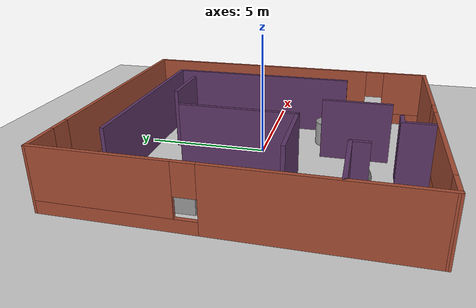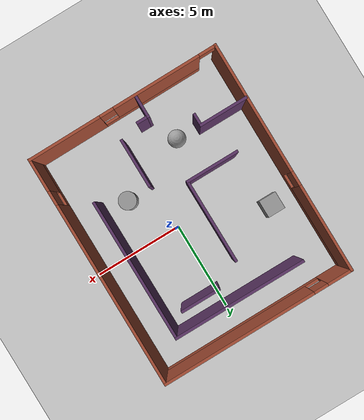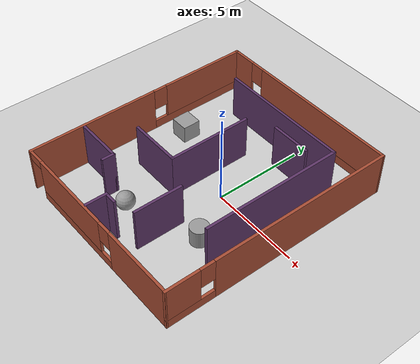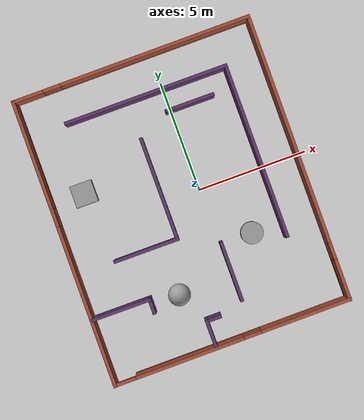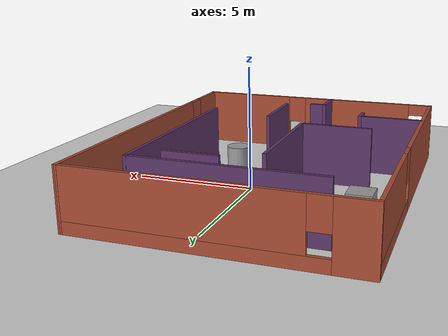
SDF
<sdf version="1.7">
 <world name="default">
  <light name="sun" type="directional">
   <pose>0 0 10 0 -0 0</pose>
   <diffuse>0.8 0.8 0.8 1</diffuse>
   <specular>0.2 0.2 0.2 1</specular>
   <attenuation>
    <range>1000</range>
    <constant>0.9</constant>
    <linear>0.01</linear>
    <quadratic>0.001</quadratic>
   </attenuation>
   <direction>-0.5 0.1 -0.9</direction>
   <spot><inner_angle>0</inner_angle><outer_angle>0</outer_angle><falloff>0</falloff></spot>
  </light>
  <model name="ground_plane">
   <static>1</static>
   <link name="link">
    <collision name="collision">
     <geometry><plane><normal>0 0 1</normal><size>100 100</size></plane></geometry>
     <surface>
      <contact><collide_bitmask>65535</collide_bitmask></contact>
      <friction><ode><mu>100</mu><mu2>50</mu2></ode></friction>
     </surface>
    </collision>
    <visual name="visual">
     <cast_shadows>0</cast_shadows>
     <geometry><plane><normal>0 0 1</normal><size>100 100</size></plane></geometry>
     <material>
      <script><uri>file://media/materials/scripts/gazebo.material</uri><name>Gazebo/Grey</name></script>
     </material>
    </visual>
   </link>
  </model>
  <gravity>0 0 -9.8</gravity>
  <magnetic_field>6e-06 2.3e-05 -4.2e-05</magnetic_field>
  <atmosphere type="adiabatic"/>
  <physics type="ode">
   <max_step_size>0.001</max_step_size>
   <real_time_factor>1</real_time_factor>
   <real_time_update_rate>1000</real_time_update_rate>
  </physics>
  <scene><ambient>0.4 0.4 0.4 1</ambient><background>0.7 0.7 0.7 1</background><shadows>1</shadows></scene>
  <spherical_coordinates>
   <surface_model>EARTH_WGS84</surface_model>
   <latitude_deg>0</latitude_deg>
   <longitude_deg>0</longitude_deg>
   <elevation>0</elevation>
   <heading_deg>0</heading_deg>
  </spherical_coordinates>
  <model name="maze">
   <pose>-0.910264 -0.210182 0 0 -0 0</pose>
   <link name="Wall_1">
    <pose>-0.015736 -6.50732 0 0 -0 -3.13597</pose>
    <visual name="Wall_1_Visual_0">
     <pose>-3.41573 0 1.25 0 -0 0</pose>
     <geometry><box><size>4.16472 0.15 2.5</size></box></geometry>
     <material>
      <script><uri>file://media/materials/scripts/gazebo.material</uri><name>Gazebo/Bricks</name></script>
      <ambient>1 1 1 1</ambient>
     </material>
     <meta><layer>0</layer></meta>
    </visual>
    <collision name="Wall_1_Collision_0">
     <geometry><box><size>4.16472 0.15 2.5</size></box></geometry>
     <pose>-3.41573 0 1.25 0 -0 0</pose>
    </collision>
    <visual name="Wall_1_Visual_1">
     <pose>5.42902 0 1.25 0 -0 0</pose>
     <geometry><box><size>0.138125 0.15 2.5</size></box></geometry>
     <material>
      <script><uri>file://media/materials/scripts/gazebo.material</uri><name>Gazebo/Bricks</name></script>
      <ambient>1 1 1 1</ambient>
     </material>
     <meta><layer>0</layer></meta>
    </visual>
    <collision name="Wall_1_Collision_1">
     <geometry><box><size>0.138125 0.15 2.5</size></box></geometry>
     <pose>5.42902 0 1.25 0 -0 0</pose>
    </collision>
    <visual name="Wall_1_Visual_2">
     <pose>1.5633 0 0.25 0 -0 0</pose>
     <geometry><box><size>5.79333 0.15 0.5</size></box></geometry>
     <material>
      <script><uri>file://media/materials/scripts/gazebo.material</uri><name>Gazebo/Bricks</name></script>
      <ambient>1 1 1 1</ambient>
     </material>
     <meta><layer>0</layer></meta>
    </visual>
    <collision name="Wall_1_Collision_2">
     <geometry><box><size>5.79333 0.15 0.5</size></box></geometry>
     <pose>1.5633 0 0.25 0 -0 0</pose>
    </collision>
    <visual name="Wall_1_Visual_3">
     <pose>1.9633 0 1.5 0 -0 0</pose>
     <geometry><box><size>4.99333 0.15 2</size></box></geometry>
     <material>
      <script><uri>file://media/materials/scripts/gazebo.material</uri><name>Gazebo/Bricks</name></script>
      <ambient>1 1 1 1</ambient>
     </material>
     <meta><layer>0</layer></meta>
    </visual>
    <collision name="Wall_1_Collision_3">
     <geometry><box><size>4.99333 0.15 2</size></box></geometry>
     <pose>1.9633 0 1.5 0 -0 0</pose>
    </collision>
    <visual name="Wall_1_Visual_4">
     <pose>-0.933367 0 1.9 0 -0 0</pose>
     <geometry><box><size>0.8 0.15 1.2</size></box></geometry>
     <material>
      <script><uri>file://media/materials/scripts/gazebo.material</uri><name>Gazebo/Bricks</name></script>
      <ambient>1 1 1 1</ambient>
     </material>
     <meta><layer>0</layer></meta>
    </visual>
    <collision name="Wall_1_Collision_4">
     <geometry><box><size>0.8 0.15 1.2</size></box></geometry>
     <pose>-0.933367 0 1.9 0 -0 0</pose>
    </collision>
    <visual name="Wall_1_Visual_5">
     <pose>4.90996 0 2.25 0 -0 0</pose>
     <geometry><box><size>0.9 0.15 0.5</size></box></geometry>
     <material>
      <script><uri>file://media/materials/scripts/gazebo.material</uri><name>Gazebo/Bricks</name></script>
      <ambient>1 1 1 1</ambient>
     </material>
     <meta><layer>0</layer></meta>
    </visual>
    <collision name="Wall_1_Collision_5">
     <geometry><box><size>0.9 0.15 0.5</size></box></geometry>
     <pose>4.90996 0 2.25 0 -0 0</pose>
    </collision>
   </link>
   <link name="Wall_18">
    <collision name="Wall_18_Collision">
     <geometry><box><size>2.75 0.15 2.5</size></box></geometry>
     <pose>0 0 1.25 0 -0 0</pose>
    </collision>
    <visual name="Wall_18_Visual">
     <pose>0 0 1.25 0 -0 0</pose>
     <geometry><box><size>2.75 0.15 2.5</size></box></geometry>
     <material>
      <script><uri>file://media/materials/scripts/gazebo.material</uri><name>Gazebo/Grey</name></script>
      <ambient>0.360784 0.207843 0.4 1</ambient>
     </material>
     <meta><layer>0</layer></meta>
    </visual>
    <pose>-4.06423 -3.53337 0 0 -0 0</pose>
   </link>
   <link name="Wall_19">
    <collision name="Wall_19_Collision">
     <geometry><box><size>0.75 0.15 2.5</size></box></geometry>
     <pose>0 0 1.25 0 -0 0</pose>
    </collision>
    <visual name="Wall_19_Visual">
     <pose>0 0 1.25 0 -0 0</pose>
     <geometry><box><size>0.75 0.15 2.5</size></box></geometry>
     <material>
      <script><uri>file://media/materials/scripts/gazebo.material</uri><name>Gazebo/Grey</name></script>
      <ambient>0.360784 0.207843 0.4 1</ambient>
     </material>
     <meta><layer>0</layer></meta>
    </visual>
    <pose>-2.76423 -3.83337 0 0 -0 -1.5708</pose>
   </link>
   <link name="Wall_2">
    <pose>-5.42275 -0.030618 0 0 -0 1.56834</pose>
    <visual name="Wall_2_Visual_0">
     <pose>-2.88442 0 1.25 0 -0 0</pose>
     <geometry><box><size>7.41559 0.15 2.5</size></box></geometry>
     <material>
      <script><uri>file://media/materials/scripts/gazebo.material</uri><name>Gazebo/Bricks</name></script>
      <ambient>1 1 1 1</ambient>
     </material>
     <meta><layer>0</layer></meta>
    </visual>
    <collision name="Wall_2_Collision_0">
     <geometry><box><size>7.41559 0.15 2.5</size></box></geometry>
     <pose>-2.88442 0 1.25 0 -0 0</pose>
    </collision>
    <visual name="Wall_2_Visual_1">
     <pose>3.7078 0 0.25 0 -0 0</pose>
     <geometry><box><size>5.76885 0.15 0.5</size></box></geometry>
     <material>
      <script><uri>file://media/materials/scripts/gazebo.material</uri><name>Gazebo/Bricks</name></script>
      <ambient>1 1 1 1</ambient>
     </material>
     <meta><layer>0</layer></meta>
    </visual>
    <collision name="Wall_2_Collision_1">
     <geometry><box><size>5.76885 0.15 0.5</size></box></geometry>
     <pose>3.7078 0 0.25 0 -0 0</pose>
    </collision>
    <visual name="Wall_2_Visual_2">
     <pose>4.1078 0 1.5 0 -0 0</pose>
     <geometry><box><size>4.96885 0.15 2</size></box></geometry>
     <material>
      <script><uri>file://media/materials/scripts/gazebo.material</uri><name>Gazebo/Bricks</name></script>
      <ambient>1 1 1 1</ambient>
     </material>
     <meta><layer>0</layer></meta>
    </visual>
    <collision name="Wall_2_Collision_2">
     <geometry><box><size>4.96885 0.15 2</size></box></geometry>
     <pose>4.1078 0 1.5 0 -0 0</pose>
    </collision>
    <visual name="Wall_2_Visual_3">
     <pose>1.22337 0 1.9 0 -0 0</pose>
     <geometry><box><size>0.8 0.15 1.2</size></box></geometry>
     <material>
      <script><uri>file://media/materials/scripts/gazebo.material</uri><name>Gazebo/Bricks</name></script>
      <ambient>1 1 1 1</ambient>
     </material>
     <meta><layer>0</layer></meta>
    </visual>
    <collision name="Wall_2_Collision_3">
     <geometry><box><size>0.8 0.15 1.2</size></box></geometry>
     <pose>1.22337 0 1.9 0 -0 0</pose>
    </collision>
   </link>
   <link name="Wall_21">
    <collision name="Wall_21_Collision">
     <geometry><box><size>1.28004 0.15 2.5</size></box></geometry>
     <pose>0 0 1.25 0 -0 0</pose>
    </collision>
    <visual name="Wall_21_Visual">
     <pose>0 0 1.25 0 -0 0</pose>
     <geometry><box><size>1.28004 0.15 2.5</size></box></geometry>
     <material>
      <script><uri>file://media/materials/scripts/gazebo.material</uri><name>Gazebo/Grey</name></script>
      <ambient>0.360784 0.207843 0.4 1</ambient>
     </material>
     <meta><layer>0</layer></meta>
    </visual>
    <pose>-0.745693 -5.83385 0 0 -0 1.5708</pose>
   </link>
   <link name="Wall_25">
    <collision name="Wall_25_Collision">
     <geometry><box><size>7.5 0.15 2.5</size></box></geometry>
     <pose>0 0 1.25 0 -0 0</pose>
    </collision>
    <visual name="Wall_25_Visual">
     <pose>0 0 1.25 0 -0 0</pose>
     <geometry><box><size>7.5 0.15 2.5</size></box></geometry>
     <material>
      <script><uri>file://media/materials/scripts/gazebo.material</uri><name>Gazebo/Grey</name></script>
      <ambient>0.360784 0.207843 0.4 1</ambient>
     </material>
     <meta><layer>0</layer></meta>
    </visual>
    <pose>0.115596 4.87894 0 0 -0 0</pose>
   </link>
   <link name="Wall_26">
    <collision name="Wall_26_Collision">
     <geometry><box><size>8 0.15 2.5</size></box></geometry>
     <pose>0 0 1.25 0 -0 0</pose>
    </collision>
    <visual name="Wall_26_Visual">
     <pose>0 0 1.25 0 -0 0</pose>
     <geometry><box><size>8 0.15 2.5</size></box></geometry>
     <material>
      <script><uri>file://media/materials/scripts/gazebo.material</uri><name>Gazebo/Grey</name></script>
      <ambient>0.360784 0.207843 0.4 1</ambient>
     </material>
     <meta><layer>0</layer></meta>
    </visual>
    <pose>3.7906 0.95394 0 0 -0 -1.5708</pose>
   </link>
   <link name="Wall_3">
    <pose>0.016077 6.53047 0 0 -0 0.003188</pose>
    <visual name="Wall_3_Visual_0">
     <pose>-4.77311 0 1.25 0 -0 0</pose>
     <geometry><box><size>1.44952 0.15 2.5</size></box></geometry>
     <material>
      <script><uri>file://media/materials/scripts/gazebo.material</uri><name>Gazebo/Bricks</name></script>
      <ambient>1 1 1 1</ambient>
     </material>
     <meta><layer>0</layer></meta>
    </visual>
    <collision name="Wall_3_Collision_0">
     <geometry><box><size>1.44952 0.15 2.5</size></box></geometry>
     <pose>-4.77311 0 1.25 0 -0 0</pose>
    </collision>
    <visual name="Wall_3_Visual_1">
     <pose>0.724758 0 0.25 0 -0 0</pose>
     <geometry><box><size>9.54622 0.15 0.5</size></box></geometry>
     <material>
      <script><uri>file://media/materials/scripts/gazebo.material</uri><name>Gazebo/Bricks</name></script>
      <ambient>1 1 1 1</ambient>
     </material>
     <meta><layer>0</layer></meta>
    </visual>
    <collision name="Wall_3_Collision_1">
     <geometry><box><size>9.54622 0.15 0.5</size></box></geometry>
     <pose>0.724758 0 0.25 0 -0 0</pose>
    </collision>
    <visual name="Wall_3_Visual_2">
     <pose>1.12476 0 1.5 0 -0 0</pose>
     <geometry><box><size>8.74622 0.15 2</size></box></geometry>
     <material>
      <script><uri>file://media/materials/scripts/gazebo.material</uri><name>Gazebo/Bricks</name></script>
      <ambient>1 1 1 1</ambient>
     </material>
     <meta><layer>0</layer></meta>
    </visual>
    <collision name="Wall_3_Collision_2">
     <geometry><box><size>8.74622 0.15 2</size></box></geometry>
     <pose>1.12476 0 1.5 0 -0 0</pose>
    </collision>
    <visual name="Wall_3_Visual_3">
     <pose>-3.64835 0 1.9 0 -0 0</pose>
     <geometry><box><size>0.8 0.15 1.2</size></box></geometry>
     <material>
      <script><uri>file://media/materials/scripts/gazebo.material</uri><name>Gazebo/Bricks</name></script>
      <ambient>1 1 1 1</ambient>
     </material>
     <meta><layer>0</layer></meta>
    </visual>
    <collision name="Wall_3_Collision_3">
     <geometry><box><size>0.8 0.15 1.2</size></box></geometry>
     <pose>-3.64835 0 1.9 0 -0 0</pose>
    </collision>
   </link>
   <link name="Wall_31">
    <collision name="Wall_31_Collision">
     <geometry><box><size>3 0.15 2.5</size></box></geometry>
     <pose>0 0 1.25 0 -0 0</pose>
    </collision>
    <visual name="Wall_31_Visual">
     <pose>0 0 1.25 0 -0 0</pose>
     <geometry><box><size>3 0.15 2.5</size></box></geometry>
     <material>
      <script><uri>file://media/materials/scripts/gazebo.material</uri><name>Gazebo/Grey</name></script>
      <ambient>0.360784 0.207843 0.4 1</ambient>
     </material>
     <meta><layer>0</layer></meta>
    </visual>
    <pose>-2.16499 -1.48383 0 0 -0 0</pose>
   </link>
   <link name="Wall_32">
    <collision name="Wall_32_Collision">
     <geometry><box><size>4.75 0.15 2.5</size></box></geometry>
     <pose>0 0 1.25 0 -0 0</pose>
    </collision>
    <visual name="Wall_32_Visual">
     <pose>0 0 1.25 0 -0 0</pose>
     <geometry><box><size>4.75 0.15 2.5</size></box></geometry>
     <material>
      <script><uri>file://media/materials/scripts/gazebo.material</uri><name>Gazebo/Grey</name></script>
      <ambient>0.360784 0.207843 0.4 1</ambient>
     </material>
     <meta><layer>0</layer></meta>
    </visual>
    <pose>-0.739994 0.816173 0 0 -0 1.5708</pose>
   </link>
   <link name="Wall_37">
    <collision name="Wall_37_Collision">
     <geometry><box><size>2.25 0.15 2.5</size></box></geometry>
     <pose>0 0 1.25 0 -0 0</pose>
    </collision>
    <visual name="Wall_37_Visual">
     <pose>0 0 1.25 0 -0 0</pose>
     <geometry><box><size>2.25 0.15 2.5</size></box></geometry>
     <material>
      <script><uri>file://media/materials/scripts/gazebo.material</uri><name>Gazebo/Grey</name></script>
      <ambient>0.360784 0.207843 0.4 1</ambient>
     </material>
     <meta><layer>0</layer></meta>
    </visual>
    <pose>1.78395 3.90005 0 0 -0 3.14159</pose>
   </link>
   <link name="Wall_39">
    <collision name="Wall_39_Collision">
     <geometry><box><size>2.75 0.15 2.5</size></box></geometry>
     <pose>0 0 1.25 0 -0 0</pose>
    </collision>
    <visual name="Wall_39_Visual">
     <pose>0 0 1.25 0 -0 0</pose>
     <geometry><box><size>2.75 0.15 2.5</size></box></geometry>
     <material>
      <script><uri>file://media/materials/scripts/gazebo.material</uri><name>Gazebo/Grey</name></script>
      <ambient>0.360784 0.207843 0.4 1</ambient>
     </material>
     <meta><layer>0</layer></meta>
    </visual>
    <pose>0.998541 -3.60976 0 0 -0 -1.5708</pose>
   </link>
   <link name="Wall_4">
    <pose>5.42309 0.030473 0 0 -0 -1.57323</pose>
    <visual name="Wall_4_Visual_0">
     <pose>-1.35288 0 1.25 0 -0 0</pose>
     <geometry><box><size>10.4789 0.15 2.5</size></box></geometry>
     <material>
      <script><uri>file://media/materials/scripts/gazebo.material</uri><name>Gazebo/Bricks</name></script>
      <ambient>1 1 1 1</ambient>
     </material>
     <meta><layer>0</layer></meta>
    </visual>
    <collision name="Wall_4_Collision_0">
     <geometry><box><size>10.4789 0.15 2.5</size></box></geometry>
     <pose>-1.35288 0 1.25 0 -0 0</pose>
    </collision>
    <visual name="Wall_4_Visual_1">
     <pose>5.23943 0 0.25 0 -0 0</pose>
     <geometry><box><size>2.70577 0.15 0.5</size></box></geometry>
     <material>
      <script><uri>file://media/materials/scripts/gazebo.material</uri><name>Gazebo/Bricks</name></script>
      <ambient>1 1 1 1</ambient>
     </material>
     <meta><layer>0</layer></meta>
    </visual>
    <collision name="Wall_4_Collision_1">
     <geometry><box><size>2.70577 0.15 0.5</size></box></geometry>
     <pose>5.23943 0 0.25 0 -0 0</pose>
    </collision>
    <visual name="Wall_4_Visual_2">
     <pose>5.63943 0 1.5 0 -0 0</pose>
     <geometry><box><size>1.90577 0.15 2</size></box></geometry>
     <material>
      <script><uri>file://media/materials/scripts/gazebo.material</uri><name>Gazebo/Bricks</name></script>
      <ambient>1 1 1 1</ambient>
     </material>
     <meta><layer>0</layer></meta>
    </visual>
    <collision name="Wall_4_Collision_2">
     <geometry><box><size>1.90577 0.15 2</size></box></geometry>
     <pose>5.63943 0 1.5 0 -0 0</pose>
    </collision>
    <visual name="Wall_4_Visual_3">
     <pose>4.28654 0 1.9 0 -0 0</pose>
     <geometry><box><size>0.8 0.15 1.2</size></box></geometry>
     <material>
      <script><uri>file://media/materials/scripts/gazebo.material</uri><name>Gazebo/Bricks</name></script>
      <ambient>1 1 1 1</ambient>
     </material>
     <meta><layer>0</layer></meta>
    </visual>
    <collision name="Wall_4_Collision_3">
     <geometry><box><size>0.8 0.15 1.2</size></box></geometry>
     <pose>4.28654 0 1.9 0 -0 0</pose>
    </collision>
   </link>
   <link name="Wall_41">
    <collision name="Wall_41_Collision">
     <geometry><box><size>0.75 0.15 2.5</size></box></geometry>
     <pose>0 0 1.25 0 -0 0</pose>
    </collision>
    <visual name="Wall_41_Visual">
     <pose>0 0 1.25 0 -0 0</pose>
     <geometry><box><size>0.75 0.15 2.5</size></box></geometry>
     <material>
      <script><uri>file://media/materials/scripts/gazebo.material</uri><name>Gazebo/Grey</name></script>
      <ambient>0.360784 0.207843 0.4 1</ambient>
     </material>
     <meta><layer>0</layer></meta>
    </visual>
    <pose>-0.445693 -5.26885 0 0 -0 0</pose>
   </link>
   <static>1</static>
  </model>
  <model name="unit_box">
   <pose>-4.84762 1.56165 0.499995 0 1e-05 0</pose>
   <link name="link">
    <inertial>
     <mass>1</mass>
     <inertia>
      <ixx>0.166667</ixx>
      <ixy>0</ixy>
      <ixz>0</ixz>
      <iyy>0.166667</iyy>
      <iyz>0</iyz>
      <izz>0.166667</izz>
     </inertia>
    </inertial>
    <collision name="collision"><geometry><box><size>1 1 1</size></box></geometry></collision>
    <visual name="visual">
     <geometry><box><size>1 1 1</size></box></geometry>
     <material>
      <script><name>Gazebo/Grey</name><uri>file://media/materials/scripts/gazebo.material</uri></script>
     </material>
    </visual>
   </link>
  </model>
  <model name="unit_sphere">
   <pose>-2.40755 -4.0668 0.5 0 -0 0</pose>
   <link name="link">
    <inertial>
     <mass>1</mass>
     <inertia><ixx>0.1</ixx><ixy>0</ixy><ixz>0</ixz><iyy>0.1</iyy><iyz>0</iyz><izz>0.1</izz></inertia>
    </inertial>
    <collision name="collision"><geometry><sphere><radius>0.5</radius></sphere></geometry></collision>
    <visual name="visual">
     <geometry><sphere><radius>0.5</radius></sphere></geometry>
     <material>
      <script><name>Gazebo/Grey</name><uri>file://media/materials/scripts/gazebo.material</uri></script>
     </material>
    </visual>
   </link>
  </model>
  <model name="unit_cylinder">
   <pose>1.52912 -2.57022 0.499997 3e-06 4e-06 -0</pose>
   <link name="link">
    <inertial>
     <mass>1</mass>
     <inertia><ixx>0.145833</ixx><ixy>0</ixy><ixz>0</ixz><iyy>0.145833</iyy><iyz>0</iyz><izz>0.125</izz></inertia>
    </inertial>
    <collision name="collision">
     <geometry><cylinder><radius>0.5</radius><length>1</length></cylinder></geometry>
    </collision>
    <visual name="visual">
     <geometry><cylinder><radius>0.5</radius><length>1</length></cylinder></geometry>
     <material>
      <script><name>Gazebo/Grey</name><uri>file://media/materials/scripts/gazebo.material</uri></script>
     </material>
    </visual>
   </link>
  </model>
  <light name="user_directional_light_0" type="directional">
   <pose>1.49658 -4.42468 1 0 -0 0</pose>
   <diffuse>0.5 0.5 0.5 1</diffuse>
   <specular>0.1 0.1 0.1 1</specular>
   <direction>0.1 0.1 -0.9</direction>
   <attenuation>
    <range>20</range>
    <constant>0.5</constant>
    <linear>0.01</linear>
    <quadratic>0.001</quadratic>
   </attenuation>
  </light>
  <light name="user_point_light_0" type="point">
   <pose>2.17658 2.78042 1 0 -0 0</pose>
   <diffuse>0.5 0.5 0.5 1</diffuse>
   <specular>0.1 0.1 0.1 1</specular>
   <attenuation>
    <range>20</range>
    <constant>0.5</constant>
    <linear>0.01</linear>
    <quadratic>0.001</quadratic>
   </attenuation>
   <cast_shadows>0</cast_shadows>
   <direction>0 0 -1</direction>
  </light>
  <light name="user_point_light_1" type="point">
   <pose>-5.57102 3.50931 1 0 -0 0</pose>
   <diffuse>0.5 0.5 0.5 1</diffuse>
   <specular>0.1 0.1 0.1 1</specular>
   <attenuation>
    <range>20</range>
    <constant>0.5</constant>
    <linear>0.01</linear>
    <quadratic>0.001</quadratic>
   </attenuation>
   <cast_shadows>0</cast_shadows>
   <direction>0 0 -1</direction>
  </light>
  <light name="user_point_light_2" type="point">
   <pose>3.92603 -5.94388 1 0 -0 0</pose>
   <diffuse>0.5 0.5 0.5 1</diffuse>
   <specular>0.1 0.1 0.1 1</specular>
   <attenuation>
    <range>20</range>
    <constant>0.5</constant>
    <linear>0.01</linear>
    <quadratic>0.001</quadratic>
   </attenuation>
   <cast_shadows>0</cast_shadows>
   <direction>0 0 -1</direction>
  </light>
  <light name="user_point_light_3" type="point">
   <pose>-0.1974 -3.9699 1 0 -0 0</pose>
   <diffuse>0.5 0.5 0.5 1</diffuse>
   <specular>0.1 0.1 0.1 1</specular>
   <attenuation>
    <range>20</range>
    <constant>0.5</constant>
    <linear>0.01</linear>
    <quadratic>0.001</quadratic>
   </attenuation>
   <cast_shadows>0</cast_shadows>
   <direction>0 0 -1</direction>
  </light>
 </world>
</sdf>
